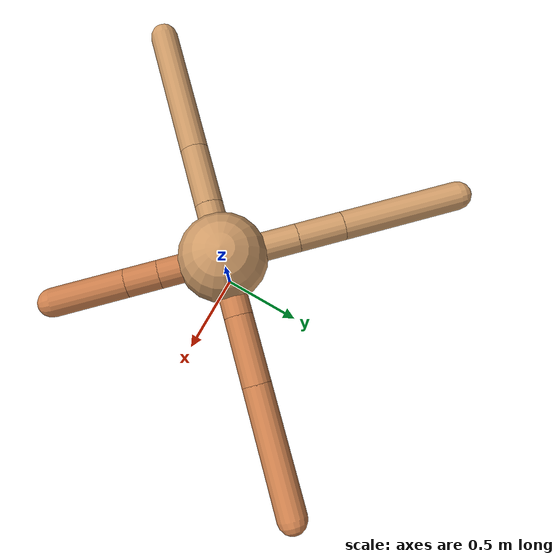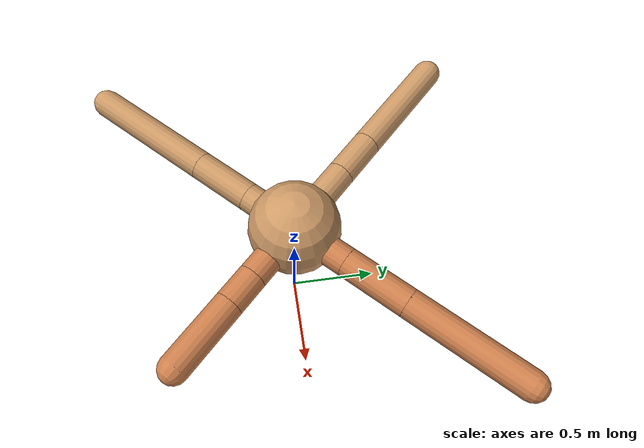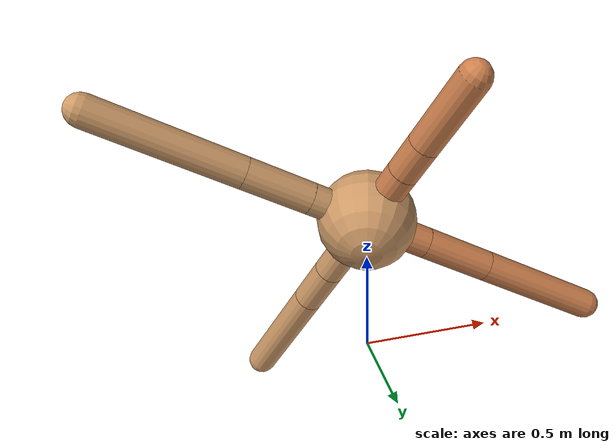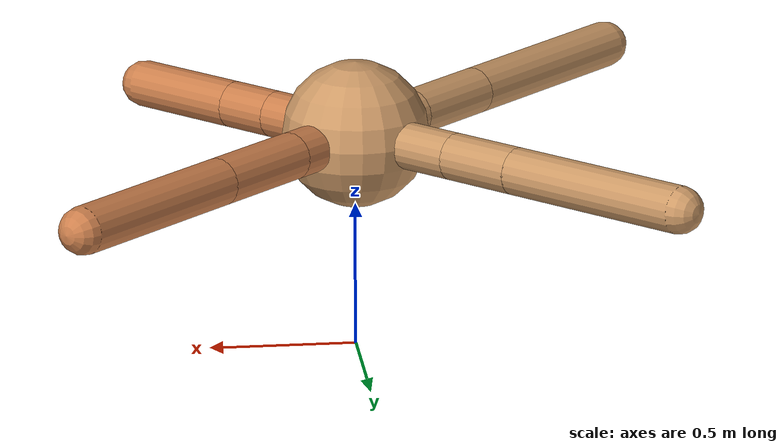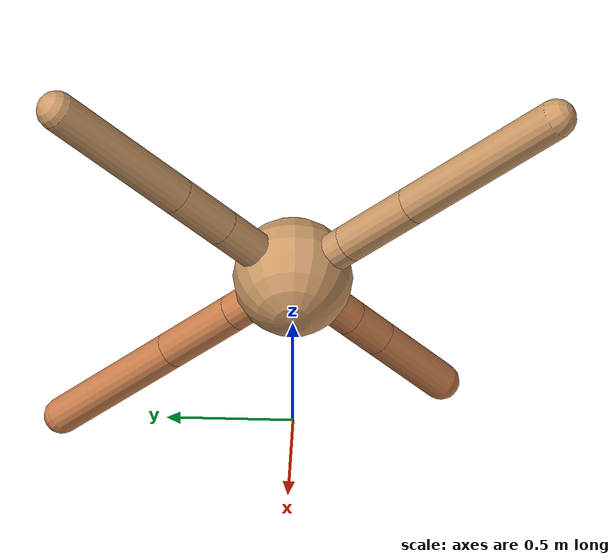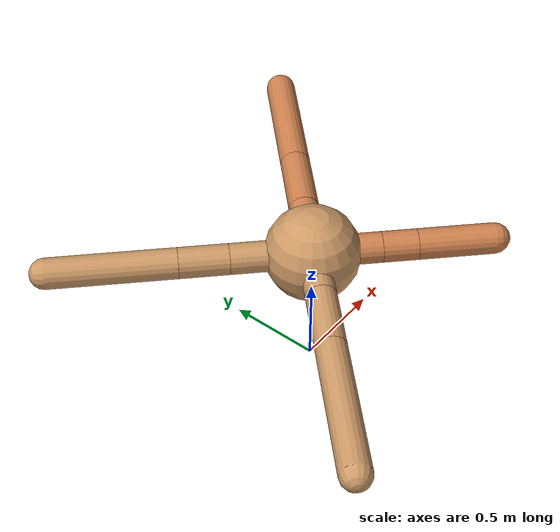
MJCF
<mujoco model="ant">
  <compiler angle="degree" coordinate="local" inertiafromgeom="true" />
  <option integrator="RK4" timestep="0.01" />
  <custom>
    <numeric data="0.0 0.0 0.55 1.0 0.0 0.0 0.0 0.0 1.0 0.0 -1.0 0.0 -1.0 0.0 1.0" name="init_qpos" />
  </custom>
  <default>
    <joint armature="1" damping="1" limited="true" />
    <geom conaffinity="0" condim="3" density="5.0" friction="1.5 0.1 0.1" margin="0.01" rgba="0.8 0.6 0.4 1" />
  </default>
  <worldbody>
    <body name="torso" pos="0 0 0.75">
      <geom name="torso_geom" pos="0 0 0" size="0.25" type="sphere" />

      <body name="front_left_leg" pos="0 0 0">
        <geom fromto="0.0 0.0 0.0 0.23719034492992883 0.23719034492992883 0.0" name="aux_1_geom" size="0.08" type="capsule" rgba=".8 .5 .3 1" />
        <body name="aux_1" pos="0.23719034492992883 0.23719034492992883 0.0">
          <joint axis="0 0 1" name="hip_1" pos="0.0 0.0 0.0" range="-40 40" type="hinge" />
          <geom fromto="0.0 0.0 0.0 0.2613567107960428 0.2613567107960428 0.0" name="left_leg_geom" size="0.08" type="capsule" rgba=".8 .5 .3 1" />
          <body pos="0.2613567107960428 0.2613567107960428 0.0" name="front_left_foot">
            <joint axis="-1 1 0" name="ankle_1" pos="0.0 0.0 0.0" range="30 100" type="hinge" />
            <geom fromto="0.0 0.0 0.0 0.4744751711997111 0.4744751711997111 0.0" name="left_ankle_geom" size="0.08" type="capsule" rgba=".8 .5 .3 1" />
          </body>
        </body>
      </body>
      <body name="front_right_leg" pos="0 0 0">
        <geom fromto="0.0 0.0 0.0 -0.2996887550135969 0.2996887550135969 0.0" name="aux_2_geom" size="0.08" type="capsule" />
        <body name="aux_2" pos="-0.2996887550135969 0.2996887550135969 0.0">
          <joint axis="0 0 1" name="hip_2" pos="0.0 0.0 0.0" range="-40 40" type="hinge" />
          <geom fromto="0.0 0.0 0.0 -0.18384902396598524 0.18384902396598524 0.0" name="right_leg_geom" size="0.08" type="capsule" />
          <body pos="-0.18384902396598524 0.18384902396598524 0.0" name="front_right_foot">
            <joint axis="1 1 0" name="ankle_2" pos="0.0 0.0 0.0" range="-100 -30" type="hinge" />
            <geom fromto="0.0 0.0 0.0 -0.47241633235021097 0.47241633235021097 0.0" name="right_ankle_geom" size="0.08" type="capsule" />
          </body>
        </body>
      </body>
      <body name="left_back_leg" pos="0 0 0">
        <geom fromto="0.0 0.0 0.0 -0.2196971601418036 -0.2196971601418036 0.0" name="aux_3_geom" size="0.08" type="capsule" />
        <body name="aux_3" pos="-0.2196971601418036 -0.2196971601418036 0.0">
          <joint axis="0 0 1" name="hip_3" pos="0.0 0.0 0.0" range="-40 40" type="hinge" />
          <geom fromto="0.0 0.0 0.0 -0.24014826822863258 -0.24014826822863258 0.0" name="back_leg_geom" size="0.08" type="capsule" />
          <body pos="-0.24014826822863258 -0.24014826822863258 0.0" name="left_back_foot">
            <joint axis="-1 1 0" name="ankle_3" pos="0.0 0.0 0.0" range="-100 -30" type="hinge" />
            <geom fromto="0.0 0.0 0.0 -0.5286651575855424 -0.5286651575855424 0.0" name="third_ankle_geom" size="0.08" type="capsule" />
          </body>
        </body>
      </body>
      <body name="right_back_leg" pos="0 0 0">
        <geom fromto="0.0 0.0 0.0 0.25037155545505496 -0.25037155545505496 0.0" name="aux_4_geom" size="0.08" type="capsule" rgba=".8 .5 .3 1" />
        <body name="aux_4" pos="0.25037155545505496 -0.25037155545505496 0.0">
          <joint axis="0 0 1" name="hip_4" pos="0.0 0.0 0.0" range="-40 40" type="hinge" />
          <geom fromto="0.0 0.0 0.0 0.1301385714161374 -0.1301385714161374 0.0" name="rightback_leg_geom" size="0.08" type="capsule" rgba=".8 .5 .3 1" />
          <body pos="0.1301385714161374 -0.1301385714161374 0.0" name="right_back_foot">
            <joint axis="1 1 0" name="ankle_4" pos="0.0 0.0 0.0" range="30 100" type="hinge" />
            <geom fromto="0.0 0.0 0.0 0.2854919775065551 -0.2854919775065551 0.0" name="fourth_ankle_geom" size="0.08" type="capsule" rgba=".8 .5 .3 1" />
          </body>
        </body>
      </body>
    </body>
  </worldbody>
  <actuator>
    <motor ctrllimited="true" ctrlrange="-1.0 1.0" joint="hip_4" gear="150" />
    <motor ctrllimited="true" ctrlrange="-1.0 1.0" joint="ankle_4" gear="150" />
    <motor ctrllimited="true" ctrlrange="-1.0 1.0" joint="hip_1" gear="150" />
    <motor ctrllimited="true" ctrlrange="-1.0 1.0" joint="ankle_1" gear="150" />
    <motor ctrllimited="true" ctrlrange="-1.0 1.0" joint="hip_2" gear="150" />
    <motor ctrllimited="true" ctrlrange="-1.0 1.0" joint="ankle_2" gear="150" />
    <motor ctrllimited="true" ctrlrange="-1.0 1.0" joint="hip_3" gear="150" />
    <motor ctrllimited="true" ctrlrange="-1.0 1.0" joint="ankle_3" gear="150" />
  </actuator>
</mujoco>
